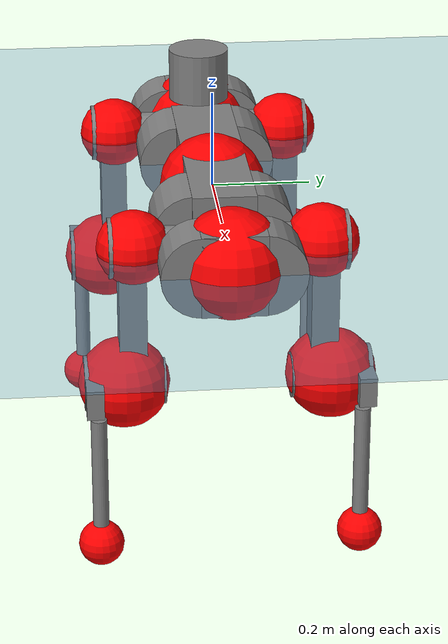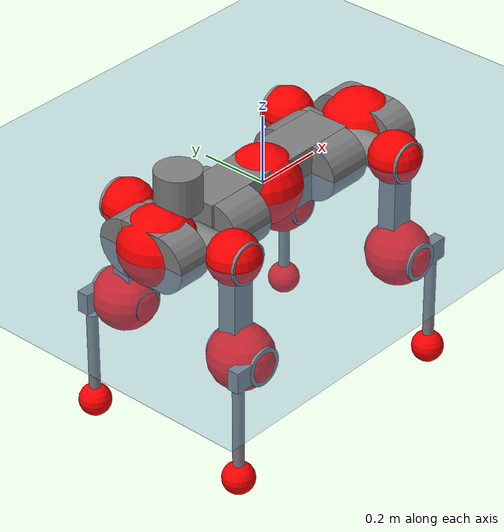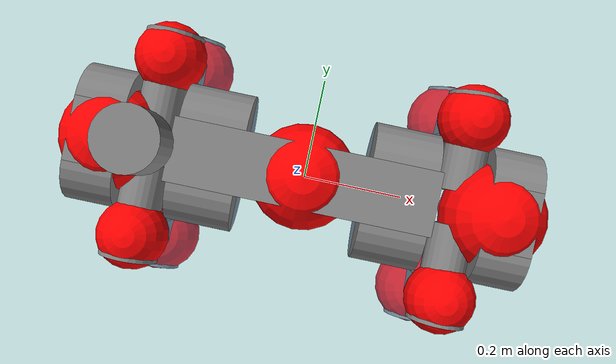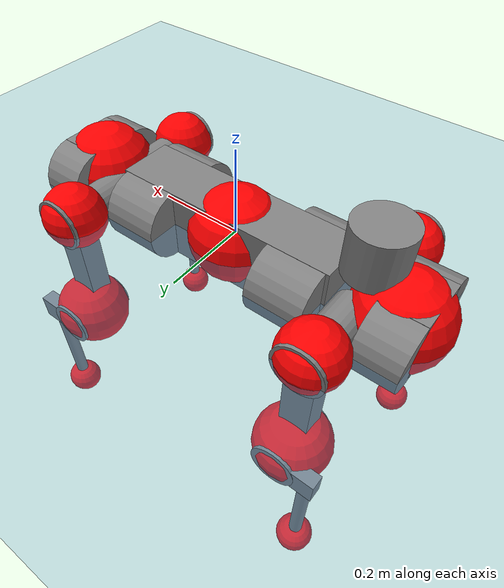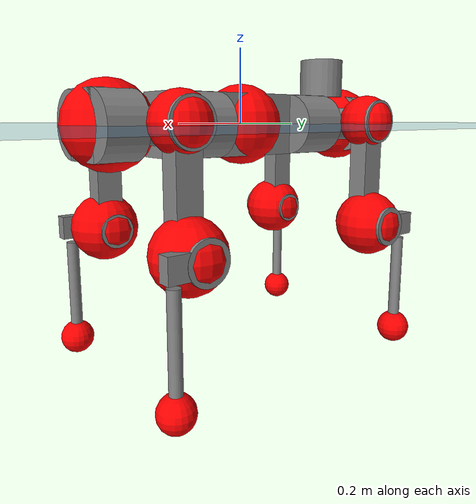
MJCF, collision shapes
<mujoco model="anymal_c">
  <compiler angle="radian" assetdir="assets" balanceinertia="true" inertiafromgeom="false"/>

  <option timestep="0.005" density="1.2" viscosity="2e-05"/>

  <size nkey="1"/>

  <visual>
    <quality shadowsize="8192"/>
    <map shadowclip="0.5"/>
  </visual>

  <default>
    <default class="/">
      <material specular="0" shininess="0.25"/>
      <geom contype="0" conaffinity="0" group="1" solref="-1000 -80"/>
      <site size="0.01 0.005 0.005" group="5"/>
      <general forcelimited="true" forcerange="-80 80" biastype="affine" gainprm="80" biasprm="0 -80 -2"/>
      <default class="anymal_c">
        <joint armature="0.01" damping="0.01" frictionloss="0.1"/>
        <default class="visual">
          <geom type="mesh" group="2"/>
          <default class="visual_zflip"/>
        </default>
        <default class="collision">
          <geom type="cylinder" group="3"/>
          <default class="foot">
            <geom size="0.03 0 0" type="sphere" condim="6" priority="1" friction="0.8 0.02 0.01" solimp="0.015 1 0.03"/>
          </default>
        </default>
      </default>
      <default class="reward_collision_sphere">
        <geom group="5" rgba="1 0 0 1"/>
      </default>
    </default>
  </default>

  <asset>
    <texture type="skybox" colorspace="auto" name="//unnamed_texture_0" builtin="gradient" rgb1="0.95 0.95 0.95" rgb2="0.95 0.95 0.95" width="100" height="600"/>
    <texture type="2d" colorspace="auto" name="texplane" builtin="checker" rgb1="0.345 0.575 0.748" rgb2="0.345 0.575 0.748" markrgb="1 1 1" width="512" height="512"/>
    <texture type="2d" colorspace="linear" name="base" file="base.png"/>
    <texture type="2d" colorspace="linear" name="top_shell" file="top_shell.png"/>
    <texture type="2d" colorspace="linear" name="bottom_shell" file="bottom_shell.png"/>
    <texture type="2d" colorspace="linear" name="remote" file="remote.png"/>
    <texture type="2d" colorspace="linear" name="hatch" file="hatch.png"/>
    <texture type="2d" colorspace="linear" name="handle" file="handle.png"/>
    <texture type="2d" colorspace="linear" name="face" file="face.png"/>
    <texture type="2d" colorspace="linear" name="battery" file="battery.png"/>
    <texture type="2d" colorspace="linear" name="lidar_cage" file="lidar_cage.png"/>
    <texture type="2d" colorspace="linear" name="depth_camera" file="depth_camera.png"/>
    <texture type="2d" colorspace="linear" name="wide_angle_camera" file="wide_angle_camera.png"/>
    <texture type="2d" colorspace="linear" name="lidar" file="lidar.png"/>
    <texture type="2d" colorspace="linear" name="drive" file="drive.png"/>
    <texture type="2d" colorspace="linear" name="hip_l" file="hip_l.png"/>
    <texture type="2d" colorspace="linear" name="shank_l" file="shank_l.png"/>
    <texture type="2d" colorspace="linear" name="foot" file="foot.png"/>
    <texture type="2d" colorspace="linear" name="thigh" file="thigh.png"/>
    <texture type="2d" colorspace="linear" name="shank_r" file="shank_r.png"/>
    <texture type="2d" colorspace="linear" name="hip_r" file="hip_r.png"/>
    <material name="MatPlane" class="/" texture="texplane" texuniform="true" texrepeat="2 2" specular="0.9" shininess="0.5"/>
    <material name="black_plastic" class="/" rgba="0.007 0.007 0.007 1"/>
    <material name="green" class="/" rgba="0.052 0.178 0.033 1"/>
    <material name="red" class="/" rgba="0.178 0.006 0.005 1"/>
    <material name="yellow" class="/" rgba="0.178 0.119 0.006 1"/>
    <material name="lwl" class="/" rgba="0.8 0.8 0.8 1"/>
    <material name="base" class="/" texture="base"/>
    <material name="top_shell" class="/" texture="top_shell"/>
    <material name="bottom_shell" class="/" texture="bottom_shell"/>
    <material name="hip_l" class="/" texture="hip_l"/>
    <material name="thigh" class="/" texture="thigh"/>
    <material name="shank_l" class="/" texture="shank_l"/>
    <material name="foot" class="/" texture="foot"/>
    <material name="hip_r" class="/" texture="hip_r"/>
    <material name="shank" class="/" texture="shank_r"/>
    <material name="hatch" class="/" texture="hatch"/>
    <material name="remote" class="/" texture="remote"/>
    <material name="handle" class="/" texture="handle"/>
    <material name="face" class="/" texture="face"/>
    <material name="depth_camera" class="/" texture="depth_camera"/>
    <material name="wide_angle_camera" class="/" texture="wide_angle_camera"/>
    <material name="battery" class="/" texture="battery"/>
    <material name="lidar_cage" class="/" texture="lidar_cage"/>
    <material name="lidar" class="/" texture="lidar"/>
    <material name="drive" class="/" texture="drive"/>
    <mesh name="base_0" class="/" file="base_0.obj"/>
    <mesh name="base_1" class="/" file="base_1.obj"/>
    <mesh name="base_2" class="/" file="base_2.obj"/>
    <mesh name="base_3" class="/" file="base_3.obj"/>
    <mesh name="base_4" class="/" file="base_4.obj"/>
    <mesh name="base_5" class="/" file="base_5.obj"/>
    <mesh name="top_shell" class="/" file="top_shell.obj"/>
    <mesh name="bottom_shell" class="/" file="bottom_shell.obj"/>
    <mesh name="remote" class="/" file="remote.obj"/>
    <mesh name="handle" class="/" file="handle.obj"/>
    <mesh name="face" class="/" file="face.obj"/>
    <mesh name="wide_angle_camera" class="/" file="wide_angle_camera.obj"/>
    <mesh name="depth_camera" class="/" file="depth_camera.obj"/>
    <mesh name="battery" class="/" file="battery.obj"/>
    <mesh name="lidar_cage" class="/" file="lidar_cage.obj"/>
    <mesh name="lidar" class="/" file="lidar.obj"/>
    <mesh name="drive" class="/" file="drive.obj"/>
    <mesh name="hip_l" class="/" file="hip_l.obj"/>
    <mesh name="thigh" class="/" file="thigh.obj"/>
    <mesh name="shank_l" class="/" file="shank_l.obj"/>
    <mesh name="foot" class="/" file="foot.obj"/>
    <mesh name="hip_r" class="/" file="hip_r.obj"/>
    <mesh name="hatch" class="/" file="hatch.obj"/>
    <mesh name="shank_r" class="/" file="shank_r.obj"/>
  </asset>

  <worldbody>
    <geom name="floor" class="/" size="100 100 0.125" type="plane" group="0" material="MatPlane"/>
    <light name="toplight_shadow" class="/" pos="0 0 5" dir="0.0990148 0.0990148 -0.990148" type="directional" ambient="0.04 0.04 0.04" diffuse="0.55 0.55 0.55" specular="0.12 0.12 0.12"/>
    <light name="toplight_fill" class="/" pos="0 0 5" dir="0.0990148 0.0990148 -0.990148" type="directional" castshadow="false" ambient="0.04 0.04 0.04" diffuse="0.3 0.3 0.3" specular="0.08 0.08 0.08"/>
    <body name="trunk" childclass="anymal_c" pos="-0.00254294 -0.000194859 -0.00279004" quat="0.999999 0.000649138 -0.000969047 0.000740187">
      <inertial pos="-0.000889397 0.00258133 0.0501438" quat="0.508182 0.496539 0.496044 0.49914" mass="14.7065" diaginertia="0.333376 0.258283 0.239143"/>
      <joint name="//unnamed_joint_0" type="free" armature="0" damping="0" frictionloss="0"/>
      <geom name="//unnamed_geom_1" class="visual" material="green" mesh="base_0"/>
      <geom name="//unnamed_geom_2" class="visual" material="yellow" mesh="base_1"/>
      <geom name="//unnamed_geom_3" class="visual" material="red" mesh="base_2"/>
      <geom name="//unnamed_geom_4" class="visual" material="black_plastic" mesh="base_3"/>
      <geom name="//unnamed_geom_5" class="visual" material="lwl" mesh="base_4"/>
      <geom name="//unnamed_geom_6" class="visual" material="base" mesh="base_5"/>
      <geom name="trunk_1" class="collision" size="0.264244 0.063783 0.0820067" type="box"/>
      <geom name="trunk_2" class="collision" size="0.0820067 0.0660609" pos="0.190326 0.0588411 0" quat="0.707107 0 0.707107 0"/>
      <geom name="trunk_3" class="collision" size="0.0820067 0.0660609" pos="-0.190326 0.0588411 0" quat="0.707107 0 0.707107 0"/>
      <geom name="trunk_4" class="collision" size="0.0820067 0.0660609" pos="0.190326 -0.0588411 0" quat="0.707107 0 0.707107 0"/>
      <geom name="trunk_5" class="collision" size="0.0820067 0.0660609" pos="-0.190326 -0.0588411 0" quat="0.707107 0 0.707107 0"/>
      <geom name="//unnamed_geom_12" class="visual" material="top_shell" mesh="top_shell"/>
      <geom name="//unnamed_geom_13" class="visual" material="bottom_shell" mesh="bottom_shell"/>
      <geom name="//unnamed_geom_14" class="visual" material="remote" mesh="remote"/>
      <geom name="//unnamed_geom_15" class="visual" material="handle" mesh="handle"/>
      <geom name="//unnamed_geom_16" class="visual" pos="0.362713 0 0" quat="1 0 0 0" material="face" mesh="face"/>
      <geom name="trunk_6" class="collision" size="0.0501152 0.063783 0.0820067" pos="0.410841 0 0" type="box"/>
      <geom name="//unnamed_geom_18" class="collision" size="0.0820067 0.0501152" pos="0.410841 0.0588411 0" quat="0.707107 0 0.707107 0"/>
      <geom name="//unnamed_geom_19" class="collision" size="0.0820067 0.0501152" pos="0.410841 -0.0588411 0" quat="0.707107 0 0.707107 0"/>
      <geom name="//unnamed_geom_20" class="visual" pos="0.403978 0 -0.0308085" quat="0.965926 0 0.258819 0" material="depth_camera" mesh="depth_camera"/>
      <geom name="//unnamed_geom_21" class="visual" pos="0.448907 0 0.0152381" material="wide_angle_camera" mesh="wide_angle_camera"/>
      <geom name="//unnamed_geom_22" class="visual_zflip" pos="-0.362713 0 0" quat="0 0 0 1" material="face" mesh="face"/>
      <geom name="trunk_7" class="collision" size="0.0501152 0.063783 0.0820067" pos="-0.410841 0 0" quat="0 0 0 1" type="box"/>
      <geom name="//unnamed_geom_24" class="collision" size="0.0820067 0.0501152" pos="-0.410841 -0.0588411 0" quat="0 -0.707107 0 0.707107"/>
      <geom name="//unnamed_geom_25" class="collision" size="0.0820067 0.0501152" pos="-0.410841 0.0588411 0" quat="0 -0.707107 0 0.707107"/>
      <geom name="//unnamed_geom_26" class="visual" pos="-0.403978 0 -0.0308085" quat="0 -0.258819 0 0.965926" material="depth_camera" mesh="depth_camera"/>
      <geom name="//unnamed_geom_27" class="visual_zflip" pos="-0.448907 0 0.0152381" quat="0 0 0 1" material="wide_angle_camera" mesh="wide_angle_camera"/>
      <geom name="//unnamed_geom_28" class="visual" material="battery" mesh="battery"/>
      <geom name="//unnamed_geom_29" class="visual" pos="0 0.0638249 0.0284846" quat="0.683013 -0.183013 0.183013 0.683013" material="depth_camera" mesh="depth_camera"/>
      <geom name="//unnamed_geom_30" class="visual" pos="0 -0.0638249 0.0284846" quat="0.683013 0.183013 0.183013 -0.683013" material="depth_camera" mesh="depth_camera"/>
      <geom name="//unnamed_geom_31" class="visual" pos="-0.318522 0 0.0748162" quat="1 0 0 0" material="lidar_cage" mesh="lidar_cage"/>
      <geom name="trunk_8" class="collision" size="0.063783 0.0546711" pos="-0.318522 0 0.135891"/>
      <geom name="//unnamed_geom_33" class="visual" pos="-0.318522 -1.3544e-05 0.144746" quat="0.707107 0 0 -0.707107" material="lidar" mesh="lidar"/>
      <geom name="//unnamed_geom_34" class="visual" pos="0.262431 0.0874841 -3.05878e-09" quat="0.258819 0.965926 0 0" material="drive" mesh="drive"/>
      <geom name="//unnamed_geom_35" class="visual" pos="0.262431 -0.0874841 3.05878e-09" quat="0.258819 -0.965926 0 0" material="drive" mesh="drive"/>
      <geom name="//unnamed_geom_36" class="visual" pos="-0.262431 0.0874841 3.05878e-09" quat="0 0 0.965926 -0.258819" material="drive" mesh="drive"/>
      <geom name="//unnamed_geom_37" class="visual" pos="-0.262431 -0.0874841 -3.05878e-09" quat="0 0 -0.965926 -0.258819" material="drive" mesh="drive"/>
      <geom name="//unnamed_geom_38" class="visual" pos="0.101507 0 0.0743072" quat="1 0 0 0" material="hatch" mesh="hatch"/>
      <geom name="//unnamed_geom_39" class="reward_collision_sphere" size="0.109342"/>
      <geom name="//unnamed_geom_40" class="reward_collision_sphere" size="0.109342" pos="0.393778 0 0"/>
      <geom name="//unnamed_geom_41" class="reward_collision_sphere" size="0.109342" pos="-0.393778 0 0"/>
      <site name="imu" pos="0.231859 0.0080673 0.0359619" size="0.00911185"/>
      <camera name="track" pos="0 -1.68117 0" quat="0.707107 0.707107 0 0" mode="trackcom"/>
      <camera name="ego_camera" pos="0.393778 0 -0.0407163" quat="-0.5 -0.5 0.5 0.5"/>
      <body name="LF_HIP" pos="0.262397 0.0867194 -0.00209357" quat="0.258748 0.965945 0.000138663 -7.54536e-05">
        <inertial pos="0.0468755 -0.0135902 -0.00965938" quat="-0.124266 0.718305 -0.13309 0.671478" mass="2.12381" diaginertia="0.00304254 0.00210145 0.00376586"/>
        <joint name="LF_HAA" pos="0 0 0" axis="0.999866 -0.00640455 0.0150695" range="-0.697304 0.479705" armature="0.0102597" damping="0.00409145" frictionloss="0.0912909"/>
        <geom name="//unnamed_geom_42" class="visual" pos="0 -0.000179934 2.95541e-05" quat="0.258819 -0.965926 0 0" material="hip_l" mesh="hip_l"/>
        <geom name="//unnamed_geom_43" class="visual" pos="0.0524162 -0.0631225 -0.0377553" quat="0.183013 -0.683013 0.683013 0.183013" material="drive" mesh="drive"/>
        <geom name="//unnamed_geom_44" class="collision" size="0.0455593 0.063783" pos="0.0524162 -0.0100533 -0.00702865" quat="-0.353553 -0.612372 0.612372 -0.353553"/>
        <body name="LF_THIGH" pos="0.0530598 -0.0615147 -0.0461239" quat="0.183 -0.68301 0.68302 0.183009">
          <inertial pos="0.0279162 -0.0009676 -0.249821" quat="0.993431 -0.00324105 -0.0844666 0.0771305" mass="2.28573" diaginertia="0.0153682 0.0119526 0.00454411"/>
          <joint name="LF_HFE" pos="0 0 0" axis="0.99999 -0.00384736 -0.00231008" stiffness="0.0130111" range="-3.14444 3.14403" armature="0.00789275" damping="0.00550045" frictionloss="0.0905138"/>
          <geom name="//unnamed_geom_45" class="visual" pos="0.000685903 1.08082e-06 0" quat="0.707107 0 0 -0.707107" material="thigh" mesh="thigh"/>
          <geom name="//unnamed_geom_46" class="collision" size="0.0592271 0.0364474" pos="0.0350025 0 0" quat="0.5 0.5 -0.5 -0.5"/>
          <geom name="//unnamed_geom_47" class="collision" size="0.0341695 0.0273356 0.128763" pos="0.0262519 0 -0.143845" quat="0.707107 0 0 -0.707107" type="box"/>
          <geom name="//unnamed_geom_48" class="visual" pos="0.0877687 0 -0.290103" quat="1 0 0 0" material="drive" mesh="drive"/>
          <geom name="//unnamed_geom_49" class="collision" size="0.0455593 0.063783" pos="0.0265144 0 -0.290103" quat="0.707107 0 0.707107 0"/>
          <geom name="//unnamed_geom_50" class="reward_collision_sphere" size="0.0728948" pos="0.0218765 0 0"/>
          <body name="LF_SHANK" pos="0.0873077 0.00019216 -0.28766" quat="1 -1.38265e-05 -3.3986e-06 6.41229e-05">
            <inertial pos="0.0031662 -0.0542297 -0.0795189" quat="0.993097 -0.114649 0.000401312 -0.0247614" mass="0.448671" diaginertia="0.00535477 0.00380726 0.00122144"/>
            <joint name="LF_KFE" pos="0 0 0" axis="1 5.02297e-05 0.000199788" range="-3.08666 3.10932" armature="0.00911689" damping="0.00801726" frictionloss="0.0931595"/>
            <geom name="//unnamed_geom_51" class="visual" pos="0.000223658 0.00119256 0" quat="0.707107 0 0 -0.707107" material="shank_l" mesh="shank_l"/>
            <geom name="LF_kfe_act" class="collision" size="0.0546711 0.0182237" pos="0.0175012 0 0" quat="0.5 0.5 -0.5 -0.5"/>
            <geom name="//unnamed_geom_53" class="collision" size="0.0523922 0.0307525 0.0173125" pos="0.0175012 -0.0483329 0" quat="0.5 0.5 -0.5 -0.5" type="box"/>
            <geom name="//unnamed_geom_54" class="visual" pos="0.0114195 -0.0735454 -0.344022" quat="0.382683 0 0 -0.92388" material="foot" mesh="foot"/>
            <geom name="LF_calf" class="collision" size="0.0159457 0.128707" pos="0.0114196 -0.0739297 -0.172011" quat="0.707107 0 0 -0.707107"/>
            <geom name="LF_foot" class="foot" size="0.0273534" pos="0.0114196 -0.0739297 -0.321119" quat="0.707107 0 0 -0.707107"/>
            <geom name="//unnamed_geom_57" class="reward_collision_sphere" size="0.0911185" pos="-0.0437531 0 0"/>
            <geom name="//unnamed_geom_58" class="reward_collision_sphere" size="0.0455593" pos="0.0114196 -0.0739297 -0.321119"/>
            <site name="LF_foot" class="foot" pos="0.0114196 -0.0739297 -0.321119" quat="0.707107 0 0 -0.707107" size="0.00911185"/>
          </body>
        </body>
      </body>
      <body name="RF_HIP" pos="0.265807 -0.0848 0.0011697" quat="0.25888 -0.96591 0.000122648 0.000254412">
        <inertial pos="0.0483893 0.0106157 -0.00897864" quat="0.132512 0.681905 0.125211 0.708356" mass="2.11027" diaginertia="0.00292714 0.00214959 0.00364602"/>
        <joint name="RF_HAA" pos="0 0 0" axis="1 0.000381382 -0.000230016" range="-0.443485 0.703012" armature="0.00910936" damping="0.0126547" frictionloss="0.100502"/>
        <geom name="//unnamed_geom_59" class="visual" pos="0 0.000179933 2.9554e-05" quat="0.258819 0.965926 0 0" material="hip_r" mesh="hip_r"/>
        <geom name="//unnamed_geom_60" class="visual" pos="0.0524162 0.0631225 -0.0377553" quat="0.183013 0.683013 0.683013 -0.183013" material="drive" mesh="drive"/>
        <geom name="//unnamed_geom_61" class="collision" size="0.0455593 0.063783" pos="0.0524162 0.0100533 -0.00702865" quat="-0.353553 0.612372 0.612372 0.353553"/>
        <body name="RF_THIGH" pos="0.0554627 0.0621292 -0.0453095" quat="0.183405 0.683045 0.68295 -0.182736">
          <inertial pos="0.026825 5.83713e-05 -0.250594" quat="0.993012 -0.00533463 -0.0792908 0.0872493" mass="2.40044" diaginertia="0.0151287 0.0127011 0.00462953"/>
          <joint name="RF_HFE" pos="0 0 0" axis="0.999994 0.00350677 0.000752231" stiffness="0.00571541" range="-3.15845 3.1816" armature="0.00823518" damping="0.008142" frictionloss="0.0952208"/>
          <geom name="//unnamed_geom_62" class="visual" pos="0.000685903 1.08082e-06 0" quat="0.707107 0 0 -0.707107" material="thigh" mesh="thigh"/>
          <geom name="//unnamed_geom_63" class="collision" size="0.0592271 0.0364474" pos="0.0350025 0 0" quat="0.5 0.5 0.5 0.5"/>
          <geom name="//unnamed_geom_64" class="collision" size="0.0341695 0.0273356 0.128763" pos="0.0262519 0 -0.143845" quat="0.707107 0 0 0.707107" type="box"/>
          <geom name="//unnamed_geom_65" class="visual" pos="0.0877687 0 -0.290103" quat="1 0 0 0" material="drive" mesh="drive"/>
          <geom name="//unnamed_geom_66" class="collision" size="0.0455593 0.063783" pos="0.0265144 0 -0.290103" quat="0.707107 0 0.707107 0"/>
          <geom name="//unnamed_geom_67" class="reward_collision_sphere" size="0.0728948" pos="0.0218765 0 0"/>
          <body name="RF_SHANK" pos="0.0879663 -0.000780069 -0.289069" quat="1 5.8724e-05 1.55598e-05 1.67294e-05">
            <inertial pos="0.00579089 0.0505589 -0.082494" quat="0.992633 0.120122 0.00663153 0.0143757" mass="0.435005" diaginertia="0.00540964 0.00389557 0.00121103"/>
            <joint name="RF_KFE" pos="0 0 0" axis="0.999999 0.000848828 -0.00113434" stiffness="0.00172018" range="-3.16215 3.08037" armature="0.0102424" damping="0.00733201" frictionloss="0.0911274"/>
            <geom name="//unnamed_geom_68" class="visual" pos="0.000223657 -0.00119255 0" quat="0.707107 0 0 0.707107" material="shank" mesh="shank_r"/>
            <geom name="RF_kfe_act" class="collision" size="0.0546711 0.0182237" pos="0.0175012 0 0" quat="0.5 0.5 0.5 0.5"/>
            <geom name="//unnamed_geom_70" class="collision" size="0.0523922 0.0307525 0.0173125" pos="0.0175012 0.0483329 0" quat="0.5 0.5 0.5 0.5" type="box"/>
            <geom name="//unnamed_geom_71" class="visual" pos="0.0114196 0.0735454 -0.344022" quat="0.382683 0 0 0.92388" material="foot" mesh="foot"/>
            <geom name="RF_calf" class="collision" size="0.0159457 0.128707" pos="0.0114196 0.0739297 -0.172011" quat="0.707107 0 0 0.707107"/>
            <geom name="RF_foot" class="foot" size="0.0293598" pos="0.0114196 0.0739297 -0.321119" quat="0.707107 0 0 0.707107"/>
            <geom name="//unnamed_geom_74" class="reward_collision_sphere" size="0.0911185" pos="-0.0437531 0 0"/>
            <geom name="//unnamed_geom_75" class="reward_collision_sphere" size="0.0455593" pos="0.0114196 0.0739297 -0.321119"/>
            <site name="RF_foot" class="foot" pos="0.0114196 0.0739297 -0.321119" quat="0.707107 0 0 0.707107" size="0.00911185"/>
          </body>
        </body>
      </body>
      <body name="LH_HIP" pos="-0.261597 0.0855455 -0.000281244" quat="-0.0002433 0.000132888 0.965911 -0.258874">
        <inertial pos="0.0496566 0.0135433 -0.00971223" quat="0.135747 0.680082 0.127208 0.70914" mass="2.14786" diaginertia="0.00308684 0.00200789 0.0035752"/>
        <joint name="LH_HAA" pos="0 0 0" axis="0.999999 0.00114679 0.000494961" range="-0.489634 0.746913" armature="0.00923023" damping="0" frictionloss="0.0969751"/>
        <geom name="//unnamed_geom_76" class="visual" pos="0 0.000179933 2.9554e-05" quat="-0.258819 -0.965926 0 0" material="hip_r" mesh="hip_r"/>
        <geom name="//unnamed_geom_77" class="visual" pos="0.0524162 0.0631225 -0.0377553" quat="0.183013 0.683013 0.683013 -0.183013" material="drive" mesh="drive"/>
        <geom name="//unnamed_geom_78" class="collision" size="0.0455593 0.063783" pos="0.0524162 0.0100533 -0.00702865" quat="-0.353553 0.612372 0.612372 0.353553"/>
        <body name="LH_THIGH" pos="0.0509541 0.0602705 -0.0438605" quat="0.182953 0.683025 0.68302 -0.183002">
          <inertial pos="0.0255548 -0.000199219 -0.249834" quat="0.992794 -0.0115669 -0.0817414 0.0868557" mass="2.38418" diaginertia="0.0158432 0.0128121 0.00464703"/>
          <joint name="LH_HFE" pos="0 0 0" axis="0.999958 0.00785246 0.00467" range="-3.16682 3.12545" armature="0.0100965" damping="0.0173296" frictionloss="0.0927964"/>
          <geom name="//unnamed_geom_79" class="visual" pos="0.000685903 1.08082e-06 0" quat="0.707107 0 0 -0.707107" material="thigh" mesh="thigh"/>
          <geom name="//unnamed_geom_80" class="collision" size="0.0592271 0.0364474" pos="0.0350025 0 0" quat="0.5 0.5 -0.5 -0.5"/>
          <geom name="//unnamed_geom_81" class="collision" size="0.0341695 0.0273356 0.128763" pos="0.0262519 0 -0.143845" quat="0.707107 0 0 -0.707107" type="box"/>
          <geom name="//unnamed_geom_82" class="visual" pos="0.0877687 0 -0.290103" quat="1 0 0 0" material="drive" mesh="drive"/>
          <geom name="//unnamed_geom_83" class="collision" size="0.0455593 0.063783" pos="0.0265144 0 -0.290103" quat="0.707107 0 0.707107 0"/>
          <geom name="//unnamed_geom_84" class="reward_collision_sphere" size="0.0728948" pos="0.0218765 0 0"/>
          <body name="LH_SHANK" pos="0.0855476 0.00154899 -0.292213" quat="1 0.00022573 0.000273699 -0.000422227">
            <inertial pos="0.00762554 0.0485491 -0.0794801" quat="0.993961 0.106336 -0.00516843 0.0265857" mass="0.434414" diaginertia="0.00521433 0.00402063 0.00119787"/>
            <joint name="LH_KFE" pos="0 0 0" axis="0.99989 0.00997685 0.0109907" stiffness="0.00106969" range="-3.10679 3.13777" armature="0.00898008" damping="0.00831335" frictionloss="0.103974"/>
            <geom name="//unnamed_geom_85" class="visual" pos="0.000223657 -0.00119255 0" quat="-0.707107 0 0 -0.707107" material="shank" mesh="shank_r"/>
            <geom name="LH_kfe_act" class="collision" size="0.0546711 0.0182237" pos="0.0175012 0 0" quat="0.5 0.5 -0.5 -0.5"/>
            <geom name="//unnamed_geom_87" class="collision" size="0.0523922 0.0307525 0.0173125" pos="0.0175012 0.0483329 0" quat="0.5 0.5 -0.5 -0.5" type="box"/>
            <geom name="//unnamed_geom_88" class="visual" pos="0.0114196 0.0735454 -0.344022" quat="-0.382683 0 0 -0.92388" material="foot" mesh="foot"/>
            <geom name="LH_calf" class="collision" size="0.0159457 0.128707" pos="0.0114196 0.0739297 -0.172011" quat="0.707107 0 0 -0.707107"/>
            <geom name="LH_foot" class="foot" size="0.0316389" pos="0.0114196 0.0739297 -0.321119" quat="0.707107 0 0 -0.707107"/>
            <geom name="//unnamed_geom_91" class="reward_collision_sphere" size="0.0911185" pos="-0.0437531 0 0"/>
            <geom name="//unnamed_geom_92" class="reward_collision_sphere" size="0.0455593" pos="0.0114196 0.0739297 -0.321119"/>
            <site name="LH_foot" class="foot" pos="0.0114196 0.0739297 -0.321119" quat="0.707107 0 0 -0.707107" size="0.00911185"/>
          </body>
        </body>
      </body>
      <body name="RH_HIP" pos="-0.262499 -0.090084 0.00079607" quat="0.00073479 0.000212446 -0.966048 -0.258361">
        <inertial pos="0.049063 -0.0115221 -0.0111952" quat="-0.127119 0.709813 -0.135 0.679544" mass="2.16641" diaginertia="0.0029898 0.0020452 0.00357271"/>
        <joint name="RH_HAA" pos="0 0 0" axis="0.999973 0.00717385 0.00171186" range="-0.680958 0.451136" armature="0.00787692" damping="0.000768695" frictionloss="0.101234"/>
        <geom name="//unnamed_geom_93" class="visual" pos="0 -0.000179934 2.95541e-05" quat="-0.258819 0.965926 0 0" material="hip_l" mesh="hip_l"/>
        <geom name="//unnamed_geom_94" class="visual" pos="0.0524162 -0.0631225 -0.0377553" quat="-0.183013 0.683013 -0.683013 -0.183013" material="drive" mesh="drive"/>
        <geom name="//unnamed_geom_95" class="collision" size="0.0455593 0.063783" pos="0.0524162 -0.0100533 -0.00702865" quat="0.353553 0.612372 -0.612372 0.353553"/>
        <body name="RH_THIGH" pos="0.0530096 -0.0603898 -0.041496" quat="-0.183176 0.682987 -0.683035 -0.182861">
          <inertial pos="0.0244312 0.00249049 -0.249919" quat="0.993169 -0.00526197 -0.080484 0.0843202" mass="2.2089" diaginertia="0.0156461 0.0123575 0.00457439"/>
          <joint name="RH_HFE" pos="0 0 0" axis="0.999915 0.0130276 -0.00109349" stiffness="0.00761181" range="-3.15767 3.16789" armature="0.00891526" damping="0.00646683" frictionloss="0.0823695"/>
          <geom name="//unnamed_geom_96" class="visual" pos="0.000685903 1.08082e-06 0" quat="0.707107 0 0 -0.707107" material="thigh" mesh="thigh"/>
          <geom name="//unnamed_geom_97" class="collision" size="0.0592271 0.0364474" pos="0.0350025 0 0" quat="0.5 0.5 0.5 0.5"/>
          <geom name="//unnamed_geom_98" class="collision" size="0.0341695 0.0273356 0.128763" pos="0.0262519 0 -0.143845" quat="0.707107 0 0 0.707107" type="box"/>
          <geom name="//unnamed_geom_99" class="visual" pos="0.0877687 0 -0.290103" quat="1 0 0 0" material="drive" mesh="drive"/>
          <geom name="//unnamed_geom_100" class="collision" size="0.0455593 0.063783" pos="0.0265144 0 -0.290103" quat="0.707107 0 0.707107 0"/>
          <geom name="//unnamed_geom_101" class="reward_collision_sphere" size="0.0728948" pos="0.0218765 0 0"/>
          <body name="RH_SHANK" pos="0.0882129 -0.000318957 -0.290992" quat="1 1.75884e-05 -3.46825e-05 8.28082e-05">
            <inertial pos="0.0070952 -0.0515454 -0.0826998" quat="0.992906 -0.116178 -0.00114916 -0.025297" mass="0.417437" diaginertia="0.00499117 0.00378865 0.00116701"/>
            <joint name="RH_KFE" pos="0 0 0" axis="0.999951 -0.000586524 0.00990544" range="-3.12999 3.1915" armature="0.00799907" damping="0.00914952" frictionloss="0.0928264"/>
            <geom name="//unnamed_geom_102" class="visual" pos="0.000223658 0.00119256 0" quat="0.707107 0 0 -0.707107" material="shank_l" mesh="shank_l"/>
            <geom name="RH_kfe_act" class="collision" size="0.0546711 0.0182237" pos="0.0175012 0 0" quat="0.5 0.5 0.5 0.5"/>
            <geom name="//unnamed_geom_104" class="collision" size="0.0523922 0.0307525 0.0173125" pos="0.0175012 -0.0483329 0" quat="0.5 0.5 0.5 0.5" type="box"/>
            <geom name="//unnamed_geom_105" class="visual" pos="0.0114195 -0.0735454 -0.344022" quat="0.382683 0 0 -0.92388" material="foot" mesh="foot"/>
            <geom name="RH_calf" class="collision" size="0.0159457 0.128707" pos="0.0114196 -0.0739297 -0.172011" quat="0.707107 0 0 0.707107"/>
            <geom name="RH_foot" class="foot" size="0.0228985" pos="0.0114196 -0.0739297 -0.321119" quat="0.707107 0 0 0.707107"/>
            <geom name="//unnamed_geom_108" class="reward_collision_sphere" size="0.0911185" pos="-0.0437531 0 0"/>
            <geom name="//unnamed_geom_109" class="reward_collision_sphere" size="0.0455593" pos="0.0114196 -0.0739297 -0.321119"/>
            <site name="RH_foot" class="foot" pos="0.0114196 -0.0739297 -0.321119" quat="0.707107 0 0 0.707107" size="0.00911185"/>
          </body>
        </body>
      </body>
    </body>
  </worldbody>

  <contact>
    <pair class="/" geom1="floor" geom2="LF_foot" name="//unnamed_contact_0"/>
    <pair class="/" geom1="floor" geom2="RF_foot" name="//unnamed_contact_1"/>
    <pair class="/" geom1="floor" geom2="LH_foot" name="//unnamed_contact_2"/>
    <pair class="/" geom1="floor" geom2="RH_foot" name="//unnamed_contact_3"/>
  </contact>

  <actuator>
    <general name="LF_HAA" class="/" joint="LF_HAA" forcerange="-76.9094 76.9094" gainprm="66.6688" biasprm="0 -66.6688 -1.85465"/>
    <general name="LF_HFE" class="/" joint="LF_HFE" forcerange="-77.3885 77.3885" gainprm="66.6688" biasprm="0 -66.6688 -1.85465"/>
    <general name="LF_KFE" class="/" joint="LF_KFE" forcerange="-68.6737 68.6737" gainprm="66.6688" biasprm="0 -66.6688 -1.85465"/>
    <general name="RF_HAA" class="/" joint="RF_HAA" forcerange="-71.8026 71.8026" gainprm="66.6688" biasprm="0 -66.6688 -1.85465"/>
    <general name="RF_HFE" class="/" joint="RF_HFE" forcerange="-82.1183 82.1183" gainprm="66.6688" biasprm="0 -66.6688 -1.85465"/>
    <general name="RF_KFE" class="/" joint="RF_KFE" forcerange="-71.3026 71.3026" gainprm="66.6688" biasprm="0 -66.6688 -1.85465"/>
    <general name="LH_HAA" class="/" joint="LH_HAA" forcerange="-75.7067 75.7067" gainprm="66.6688" biasprm="0 -66.6688 -1.85465"/>
    <general name="LH_HFE" class="/" joint="LH_HFE" forcerange="-81.322 81.322" gainprm="66.6688" biasprm="0 -66.6688 -1.85465"/>
    <general name="LH_KFE" class="/" joint="LH_KFE" forcerange="-70.3829 70.3829" gainprm="66.6688" biasprm="0 -66.6688 -1.85465"/>
    <general name="RH_HAA" class="/" joint="RH_HAA" forcerange="-71.8504 71.8504" gainprm="66.6688" biasprm="0 -66.6688 -1.85465"/>
    <general name="RH_HFE" class="/" joint="RH_HFE" forcerange="-72.8178 72.8178" gainprm="66.6688" biasprm="0 -66.6688 -1.85465"/>
    <general name="RH_KFE" class="/" joint="RH_KFE" forcerange="-67.4776 67.4776" gainprm="66.6688" biasprm="0 -66.6688 -1.85465"/>
  </actuator>

  <sensor>
    <gyro site="imu" name="imu_angular_velocity"/>
    <velocimeter site="imu" name="imu_linear_velocity"/>
    <framelinvel objtype="site" objname="LF_foot" name="LF_foot_global_linear_velocity"/>
    <framelinvel objtype="site" objname="RF_foot" name="RF_foot_global_linear_velocity"/>
    <framelinvel objtype="site" objname="LH_foot" name="LH_foot_global_linear_velocity"/>
    <framelinvel objtype="site" objname="RH_foot" name="RH_foot_global_linear_velocity"/>
  </sensor>

  <keyframe>
    <key name="home" qpos="0 0 0.55 1 0 0 0 0 0.4 -0.8 0 -0.4 0.8 0 -0.4 0.8 0 0.4 -0.8"/>
  </keyframe>
</mujoco>
